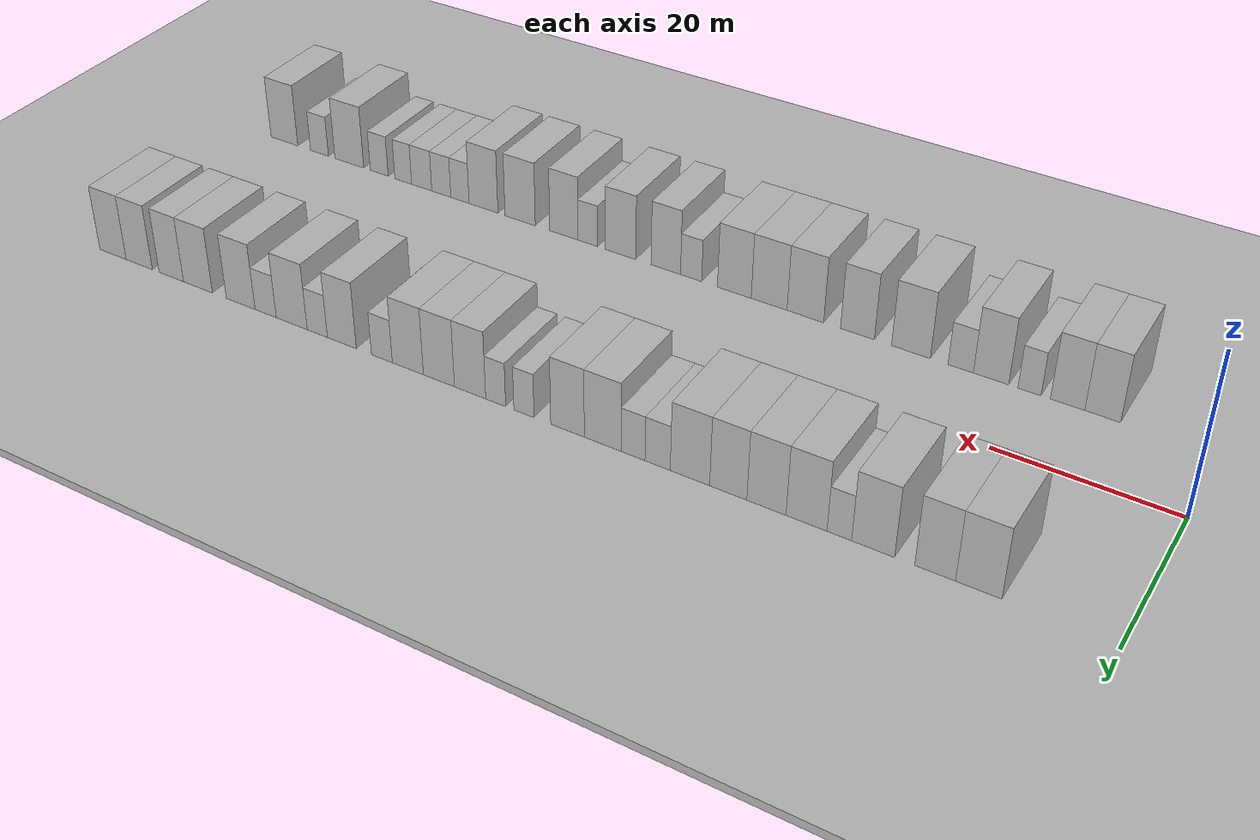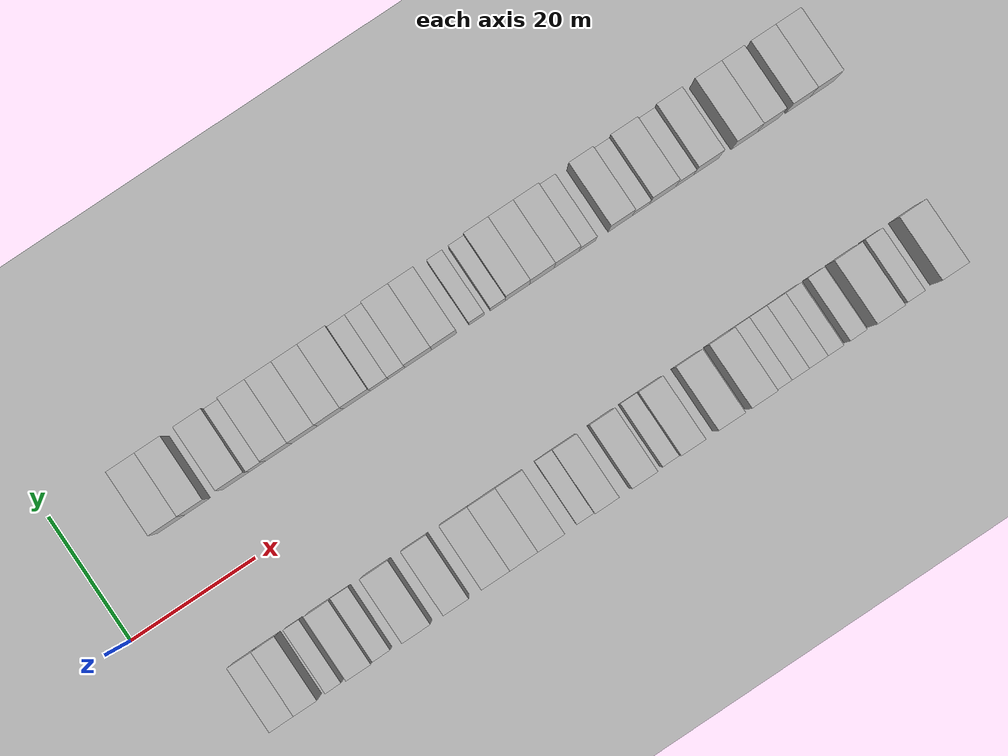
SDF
<sdf version="1.6">
 <world name="default">
  <include><name>ground_plane_1</name><uri>model://HANNAS_ground_plane</uri></include>
  <include>
   <name>ground_plane_2</name>
   <uri>model://HANNAS_ground_plane</uri>
   <pose>100 0 0  0 0 0</pose>
  </include>
  <model name="building_1">
   <static>1</static>
   <pose>13.2403 15.0000 0 0.000000 0.000000 1.570796</pose>
   <link name="link">
    <pose>0 0 4.50 0 0 0</pose>
    <collision name="collision"><geometry><box><size>10.0000 4.4805 9.0000</size></box></geometry></collision>
    <visual name="visual">
     <cast_shadows>0</cast_shadows>
     <geometry><box><size>10.0000 4.4805 9.0000</size></box></geometry>
     <material>
      <script>
       <uri>model://HANNAS_wall/materials/scripts</uri>
       <uri>model://HANNAS_wall/materials/textures</uri>
       <name>vrc/HANNAS_wall</name>
      </script>
     </material>
    </visual>
   </link>
  </model>
  <model name="building_2">
   <static>1</static>
   <pose>17.4862 15.0000 0 0.000000 0.000000 1.570796</pose>
   <link name="link">
    <pose>0 0 4.50 0 0 0</pose>
    <collision name="collision"><geometry><box><size>10.0000 4.0113 9.0000</size></box></geometry></collision>
    <visual name="visual">
     <cast_shadows>0</cast_shadows>
     <geometry><box><size>10.0000 4.0113 9.0000</size></box></geometry>
     <material>
      <script>
       <uri>model://HANNAS_wall/materials/scripts</uri>
       <uri>model://HANNAS_wall/materials/textures</uri>
       <name>vrc/HANNAS_wall</name>
      </script>
     </material>
    </visual>
   </link>
  </model>
  <model name="building_3">
   <static>1</static>
   <pose>23.6738 15.0000 0 0.000000 0.000000 1.570796</pose>
   <link name="link">
    <pose>0 0 4.50 0 0 0</pose>
    <collision name="collision"><geometry><box><size>10.0000 4.3640 9.0000</size></box></geometry></collision>
    <visual name="visual">
     <cast_shadows>0</cast_shadows>
     <geometry><box><size>10.0000 4.3640 9.0000</size></box></geometry>
     <material>
      <script>
       <uri>model://HANNAS_wall/materials/scripts</uri>
       <uri>model://HANNAS_wall/materials/textures</uri>
       <name>vrc/HANNAS_wall</name>
      </script>
     </material>
    </visual>
   </link>
  </model>
  <model name="building_4">
   <static>1</static>
   <pose>27.1243 15.0000 0 0.000000 0.000000 1.570796</pose>
   <link name="link">
    <pose>0 0 3.00 0 0 0</pose>
    <collision name="collision"><geometry><box><size>10.0000 2.5370 6.0000</size></box></geometry></collision>
    <visual name="visual">
     <cast_shadows>0</cast_shadows>
     <geometry><box><size>10.0000 2.5370 6.0000</size></box></geometry>
     <material>
      <script>
       <uri>model://HANNAS_wall/materials/scripts</uri>
       <uri>model://HANNAS_wall/materials/textures</uri>
       <name>vrc/HANNAS_wall</name>
      </script>
     </material>
    </visual>
   </link>
  </model>
  <model name="building_5">
   <static>1</static>
   <pose>30.5359 15.0000 0 0.000000 0.000000 1.570796</pose>
   <link name="link">
    <pose>0 0 4.50 0 0 0</pose>
    <collision name="collision"><geometry><box><size>10.0000 4.2863 9.0000</size></box></geometry></collision>
    <visual name="visual">
     <cast_shadows>0</cast_shadows>
     <geometry><box><size>10.0000 4.2863 9.0000</size></box></geometry>
     <material>
      <script>
       <uri>model://HANNAS_wall/materials/scripts</uri>
       <uri>model://HANNAS_wall/materials/textures</uri>
       <name>vrc/HANNAS_wall</name>
      </script>
     </material>
    </visual>
   </link>
  </model>
  <model name="building_6">
   <static>1</static>
   <pose>34.7743 15.0000 0 0.000000 0.000000 1.570796</pose>
   <link name="link">
    <pose>0 0 4.50 0 0 0</pose>
    <collision name="collision"><geometry><box><size>10.0000 4.1904 9.0000</size></box></geometry></collision>
    <visual name="visual">
     <cast_shadows>0</cast_shadows>
     <geometry><box><size>10.0000 4.1904 9.0000</size></box></geometry>
     <material>
      <script>
       <uri>model://HANNAS_wall/materials/scripts</uri>
       <uri>model://HANNAS_wall/materials/textures</uri>
       <name>vrc/HANNAS_wall</name>
      </script>
     </material>
    </visual>
   </link>
  </model>
  <model name="building_7">
   <static>1</static>
   <pose>38.8950 15.0000 0 0.000000 0.000000 1.570796</pose>
   <link name="link">
    <pose>0 0 4.50 0 0 0</pose>
    <collision name="collision"><geometry><box><size>10.0000 4.0511 9.0000</size></box></geometry></collision>
    <visual name="visual">
     <cast_shadows>0</cast_shadows>
     <geometry><box><size>10.0000 4.0511 9.0000</size></box></geometry>
     <material>
      <script>
       <uri>model://HANNAS_wall/materials/scripts</uri>
       <uri>model://HANNAS_wall/materials/textures</uri>
       <name>vrc/HANNAS_wall</name>
      </script>
     </material>
    </visual>
   </link>
  </model>
  <model name="building_8">
   <static>1</static>
   <pose>43.1086 15.0000 0 0.000000 0.000000 1.570796</pose>
   <link name="link">
    <pose>0 0 4.50 0 0 0</pose>
    <collision name="collision"><geometry><box><size>10.0000 4.3761 9.0000</size></box></geometry></collision>
    <visual name="visual">
     <cast_shadows>0</cast_shadows>
     <geometry><box><size>10.0000 4.3761 9.0000</size></box></geometry>
     <material>
      <script>
       <uri>model://HANNAS_wall/materials/scripts</uri>
       <uri>model://HANNAS_wall/materials/textures</uri>
       <name>vrc/HANNAS_wall</name>
      </script>
     </material>
    </visual>
   </link>
  </model>
  <model name="building_9">
   <static>1</static>
   <pose>46.7246 15.0000 0 0.000000 0.000000 1.570796</pose>
   <link name="link">
    <pose>0 0 3.00 0 0 0</pose>
    <collision name="collision"><geometry><box><size>10.0000 2.8559 6.0000</size></box></geometry></collision>
    <visual name="visual">
     <cast_shadows>0</cast_shadows>
     <geometry><box><size>10.0000 2.8559 6.0000</size></box></geometry>
     <material>
      <script>
       <uri>model://HANNAS_wall/materials/scripts</uri>
       <uri>model://HANNAS_wall/materials/textures</uri>
       <name>vrc/HANNAS_wall</name>
      </script>
     </material>
    </visual>
   </link>
  </model>
  <model name="building_10">
   <static>1</static>
   <pose>49.5225 15.0000 0 0.000000 0.000000 1.570796</pose>
   <link name="link">
    <pose>0 0 3.00 0 0 0</pose>
    <collision name="collision"><geometry><box><size>10.0000 2.7400 6.0000</size></box></geometry></collision>
    <visual name="visual">
     <cast_shadows>0</cast_shadows>
     <geometry><box><size>10.0000 2.7400 6.0000</size></box></geometry>
     <material>
      <script>
       <uri>model://HANNAS_wall/materials/scripts</uri>
       <uri>model://HANNAS_wall/materials/textures</uri>
       <name>vrc/HANNAS_wall</name>
      </script>
     </material>
    </visual>
   </link>
  </model>
  <model name="building_11">
   <static>1</static>
   <pose>53.0292 15.0000 0 0.000000 0.000000 1.570796</pose>
   <link name="link">
    <pose>0 0 4.50 0 0 0</pose>
    <collision name="collision"><geometry><box><size>10.0000 4.2733 9.0000</size></box></geometry></collision>
    <visual name="visual">
     <cast_shadows>0</cast_shadows>
     <geometry><box><size>10.0000 4.2733 9.0000</size></box></geometry>
     <material>
      <script>
       <uri>model://HANNAS_wall/materials/scripts</uri>
       <uri>model://HANNAS_wall/materials/textures</uri>
       <name>vrc/HANNAS_wall</name>
      </script>
     </material>
    </visual>
   </link>
  </model>
  <model name="building_12">
   <static>1</static>
   <pose>57.1540 15.0000 0 0.000000 0.000000 1.570796</pose>
   <link name="link">
    <pose>0 0 4.50 0 0 0</pose>
    <collision name="collision"><geometry><box><size>10.0000 3.9763 9.0000</size></box></geometry></collision>
    <visual name="visual">
     <cast_shadows>0</cast_shadows>
     <geometry><box><size>10.0000 3.9763 9.0000</size></box></geometry>
     <material>
      <script>
       <uri>model://HANNAS_wall/materials/scripts</uri>
       <uri>model://HANNAS_wall/materials/textures</uri>
       <name>vrc/HANNAS_wall</name>
      </script>
     </material>
    </visual>
   </link>
  </model>
  <model name="building_13">
   <static>1</static>
   <pose>62.3634 15.0000 0 0.000000 0.000000 1.570796</pose>
   <link name="link">
    <pose>0 0 3.00 0 0 0</pose>
    <collision name="collision"><geometry><box><size>10.0000 2.4425 6.0000</size></box></geometry></collision>
    <visual name="visual">
     <cast_shadows>0</cast_shadows>
     <geometry><box><size>10.0000 2.4425 6.0000</size></box></geometry>
     <material>
      <script>
       <uri>model://HANNAS_wall/materials/scripts</uri>
       <uri>model://HANNAS_wall/materials/textures</uri>
       <name>vrc/HANNAS_wall</name>
      </script>
     </material>
    </visual>
   </link>
  </model>
  <model name="building_14">
   <static>1</static>
   <pose>65.8140 15.0000 0 0.000000 0.000000 1.570796</pose>
   <link name="link">
    <pose>0 0 3.00 0 0 0</pose>
    <collision name="collision"><geometry><box><size>10.0000 2.4586 6.0000</size></box></geometry></collision>
    <visual name="visual">
     <cast_shadows>0</cast_shadows>
     <geometry><box><size>10.0000 2.4586 6.0000</size></box></geometry>
     <material>
      <script>
       <uri>model://HANNAS_wall/materials/scripts</uri>
       <uri>model://HANNAS_wall/materials/textures</uri>
       <name>vrc/HANNAS_wall</name>
      </script>
     </material>
    </visual>
   </link>
  </model>
  <model name="building_15">
   <static>1</static>
   <pose>68.9917 15.0000 0 0.000000 0.000000 1.570796</pose>
   <link name="link">
    <pose>0 0 4.50 0 0 0</pose>
    <collision name="collision"><geometry><box><size>10.0000 3.8968 9.0000</size></box></geometry></collision>
    <visual name="visual">
     <cast_shadows>0</cast_shadows>
     <geometry><box><size>10.0000 3.8968 9.0000</size></box></geometry>
     <material>
      <script>
       <uri>model://HANNAS_wall/materials/scripts</uri>
       <uri>model://HANNAS_wall/materials/textures</uri>
       <name>vrc/HANNAS_wall</name>
      </script>
     </material>
    </visual>
   </link>
  </model>
  <model name="building_16">
   <static>1</static>
   <pose>72.9153 15.0000 0 0.000000 0.000000 1.570796</pose>
   <link name="link">
    <pose>0 0 4.50 0 0 0</pose>
    <collision name="collision"><geometry><box><size>10.0000 3.9504 9.0000</size></box></geometry></collision>
    <visual name="visual">
     <cast_shadows>0</cast_shadows>
     <geometry><box><size>10.0000 3.9504 9.0000</size></box></geometry>
     <material>
      <script>
       <uri>model://HANNAS_wall/materials/scripts</uri>
       <uri>model://HANNAS_wall/materials/textures</uri>
       <name>vrc/HANNAS_wall</name>
      </script>
     </material>
    </visual>
   </link>
  </model>
  <model name="building_17">
   <static>1</static>
   <pose>76.8977 15.0000 0 0.000000 0.000000 1.570796</pose>
   <link name="link">
    <pose>0 0 4.50 0 0 0</pose>
    <collision name="collision"><geometry><box><size>10.0000 4.0143 9.0000</size></box></geometry></collision>
    <visual name="visual">
     <cast_shadows>0</cast_shadows>
     <geometry><box><size>10.0000 4.0143 9.0000</size></box></geometry>
     <material>
      <script>
       <uri>model://HANNAS_wall/materials/scripts</uri>
       <uri>model://HANNAS_wall/materials/textures</uri>
       <name>vrc/HANNAS_wall</name>
      </script>
     </material>
    </visual>
   </link>
  </model>
  <model name="building_18">
   <static>1</static>
   <pose>80.2734 15.0000 0 0.000000 0.000000 1.570796</pose>
   <link name="link">
    <pose>0 0 3.00 0 0 0</pose>
    <collision name="collision"><geometry><box><size>10.0000 2.7371 6.0000</size></box></geometry></collision>
    <visual name="visual">
     <cast_shadows>0</cast_shadows>
     <geometry><box><size>10.0000 2.7371 6.0000</size></box></geometry>
     <material>
      <script>
       <uri>model://HANNAS_wall/materials/scripts</uri>
       <uri>model://HANNAS_wall/materials/textures</uri>
       <name>vrc/HANNAS_wall</name>
      </script>
     </material>
    </visual>
   </link>
  </model>
  <model name="building_19">
   <static>1</static>
   <pose>85.5805 15.0000 0 0.000000 0.000000 1.570796</pose>
   <link name="link">
    <pose>0 0 4.50 0 0 0</pose>
    <collision name="collision"><geometry><box><size>10.0000 3.8772 9.0000</size></box></geometry></collision>
    <visual name="visual">
     <cast_shadows>0</cast_shadows>
     <geometry><box><size>10.0000 3.8772 9.0000</size></box></geometry>
     <material>
      <script>
       <uri>model://HANNAS_wall/materials/scripts</uri>
       <uri>model://HANNAS_wall/materials/textures</uri>
       <name>vrc/HANNAS_wall</name>
      </script>
     </material>
    </visual>
   </link>
  </model>
  <model name="building_20">
   <static>1</static>
   <pose>88.8902 15.0000 0 0.000000 0.000000 1.570796</pose>
   <link name="link">
    <pose>0 0 3.00 0 0 0</pose>
    <collision name="collision"><geometry><box><size>10.0000 2.7421 6.0000</size></box></geometry></collision>
    <visual name="visual">
     <cast_shadows>0</cast_shadows>
     <geometry><box><size>10.0000 2.7421 6.0000</size></box></geometry>
     <material>
      <script>
       <uri>model://HANNAS_wall/materials/scripts</uri>
       <uri>model://HANNAS_wall/materials/textures</uri>
       <name>vrc/HANNAS_wall</name>
      </script>
     </material>
    </visual>
   </link>
  </model>
  <model name="building_21">
   <static>1</static>
   <pose>92.3960 15.0000 0 0.000000 0.000000 1.570796</pose>
   <link name="link">
    <pose>0 0 4.50 0 0 0</pose>
    <collision name="collision"><geometry><box><size>10.0000 4.2694 9.0000</size></box></geometry></collision>
    <visual name="visual">
     <cast_shadows>0</cast_shadows>
     <geometry><box><size>10.0000 4.2694 9.0000</size></box></geometry>
     <material>
      <script>
       <uri>model://HANNAS_wall/materials/scripts</uri>
       <uri>model://HANNAS_wall/materials/textures</uri>
       <name>vrc/HANNAS_wall</name>
      </script>
     </material>
    </visual>
   </link>
  </model>
  <model name="building_22">
   <static>1</static>
   <pose>96.0144 15.0000 0 0.000000 0.000000 1.570796</pose>
   <link name="link">
    <pose>0 0 3.00 0 0 0</pose>
    <collision name="collision"><geometry><box><size>10.0000 2.9675 6.0000</size></box></geometry></collision>
    <visual name="visual">
     <cast_shadows>0</cast_shadows>
     <geometry><box><size>10.0000 2.9675 6.0000</size></box></geometry>
     <material>
      <script>
       <uri>model://HANNAS_wall/materials/scripts</uri>
       <uri>model://HANNAS_wall/materials/textures</uri>
       <name>vrc/HANNAS_wall</name>
      </script>
     </material>
    </visual>
   </link>
  </model>
  <model name="building_23">
   <static>1</static>
   <pose>99.5372 15.0000 0 0.000000 0.000000 1.570796</pose>
   <link name="link">
    <pose>0 0 4.50 0 0 0</pose>
    <collision name="collision"><geometry><box><size>10.0000 4.0781 9.0000</size></box></geometry></collision>
    <visual name="visual">
     <cast_shadows>0</cast_shadows>
     <geometry><box><size>10.0000 4.0781 9.0000</size></box></geometry>
     <material>
      <script>
       <uri>model://HANNAS_wall/materials/scripts</uri>
       <uri>model://HANNAS_wall/materials/textures</uri>
       <name>vrc/HANNAS_wall</name>
      </script>
     </material>
    </visual>
   </link>
  </model>
  <model name="building_24">
   <static>1</static>
   <pose>105.6839 15.0000 0 0.000000 0.000000 1.570796</pose>
   <link name="link">
    <pose>0 0 4.50 0 0 0</pose>
    <collision name="collision"><geometry><box><size>10.0000 4.2154 9.0000</size></box></geometry></collision>
    <visual name="visual">
     <cast_shadows>0</cast_shadows>
     <geometry><box><size>10.0000 4.2154 9.0000</size></box></geometry>
     <material>
      <script>
       <uri>model://HANNAS_wall/materials/scripts</uri>
       <uri>model://HANNAS_wall/materials/textures</uri>
       <name>vrc/HANNAS_wall</name>
      </script>
     </material>
    </visual>
   </link>
  </model>
  <model name="building_25">
   <static>1</static>
   <pose>109.6026 15.0000 0 0.000000 0.000000 1.570796</pose>
   <link name="link">
    <pose>0 0 4.50 0 0 0</pose>
    <collision name="collision"><geometry><box><size>10.0000 3.6221 9.0000</size></box></geometry></collision>
    <visual name="visual">
     <cast_shadows>0</cast_shadows>
     <geometry><box><size>10.0000 3.6221 9.0000</size></box></geometry>
     <material>
      <script>
       <uri>model://HANNAS_wall/materials/scripts</uri>
       <uri>model://HANNAS_wall/materials/textures</uri>
       <name>vrc/HANNAS_wall</name>
      </script>
     </material>
    </visual>
   </link>
  </model>
  <model name="building_26">
   <static>1</static>
   <pose>114.3878 15.0000 0 0.000000 0.000000 1.570796</pose>
   <link name="link">
    <pose>0 0 4.50 0 0 0</pose>
    <collision name="collision"><geometry><box><size>10.0000 3.9483 9.0000</size></box></geometry></collision>
    <visual name="visual">
     <cast_shadows>0</cast_shadows>
     <geometry><box><size>10.0000 3.9483 9.0000</size></box></geometry>
     <material>
      <script>
       <uri>model://HANNAS_wall/materials/scripts</uri>
       <uri>model://HANNAS_wall/materials/textures</uri>
       <name>vrc/HANNAS_wall</name>
      </script>
     </material>
    </visual>
   </link>
  </model>
  <model name="building_27">
   <static>1</static>
   <pose>118.3760 15.0000 0 0.000000 0.000000 1.570796</pose>
   <link name="link">
    <pose>0 0 4.50 0 0 0</pose>
    <collision name="collision"><geometry><box><size>10.0000 4.0280 9.0000</size></box></geometry></collision>
    <visual name="visual">
     <cast_shadows>0</cast_shadows>
     <geometry><box><size>10.0000 4.0280 9.0000</size></box></geometry>
     <material>
      <script>
       <uri>model://HANNAS_wall/materials/scripts</uri>
       <uri>model://HANNAS_wall/materials/textures</uri>
       <name>vrc/HANNAS_wall</name>
      </script>
     </material>
    </visual>
   </link>
  </model>
  <model name="building_56">
   <static>1</static>
   <pose>11.8837 -15.0000 0 0.000000 0.000000 1.570796</pose>
   <link name="link">
    <pose>0 0 4.50 0 0 0</pose>
    <collision name="collision"><geometry><box><size>10.0000 3.7673 9.0000</size></box></geometry></collision>
    <visual name="visual">
     <cast_shadows>0</cast_shadows>
     <geometry><box><size>10.0000 3.7673 9.0000</size></box></geometry>
     <material>
      <script>
       <uri>model://HANNAS_wall/materials/scripts</uri>
       <uri>model://HANNAS_wall/materials/textures</uri>
       <name>vrc/HANNAS_wall</name>
      </script>
     </material>
    </visual>
   </link>
  </model>
  <model name="building_57">
   <static>1</static>
   <pose>15.5975 -15.0000 0 0.000000 0.000000 1.570796</pose>
   <link name="link">
    <pose>0 0 4.50 0 0 0</pose>
    <collision name="collision"><geometry><box><size>10.0000 3.6603 9.0000</size></box></geometry></collision>
    <visual name="visual">
     <cast_shadows>0</cast_shadows>
     <geometry><box><size>10.0000 3.6603 9.0000</size></box></geometry>
     <material>
      <script>
       <uri>model://HANNAS_wall/materials/scripts</uri>
       <uri>model://HANNAS_wall/materials/textures</uri>
       <name>vrc/HANNAS_wall</name>
      </script>
     </material>
    </visual>
   </link>
  </model>
  <model name="building_58">
   <static>1</static>
   <pose>19.6850 -15.0000 0 0.000000 0.000000 1.570796</pose>
   <link name="link">
    <pose>0 0 3.00 0 0 0</pose>
    <collision name="collision"><geometry><box><size>10.0000 2.5149 6.0000</size></box></geometry></collision>
    <visual name="visual">
     <cast_shadows>0</cast_shadows>
     <geometry><box><size>10.0000 2.5149 6.0000</size></box></geometry>
     <material>
      <script>
       <uri>model://HANNAS_wall/materials/scripts</uri>
       <uri>model://HANNAS_wall/materials/textures</uri>
       <name>vrc/HANNAS_wall</name>
      </script>
     </material>
    </visual>
   </link>
  </model>
  <model name="building_59">
   <static>1</static>
   <pose>23.8967 -15.0000 0 0.000000 0.000000 1.570796</pose>
   <link name="link">
    <pose>0 0 4.50 0 0 0</pose>
    <collision name="collision"><geometry><box><size>10.0000 3.9086 9.0000</size></box></geometry></collision>
    <visual name="visual">
     <cast_shadows>0</cast_shadows>
     <geometry><box><size>10.0000 3.9086 9.0000</size></box></geometry>
     <material>
      <script>
       <uri>model://HANNAS_wall/materials/scripts</uri>
       <uri>model://HANNAS_wall/materials/textures</uri>
       <name>vrc/HANNAS_wall</name>
      </script>
     </material>
    </visual>
   </link>
  </model>
  <model name="building_60">
   <static>1</static>
   <pose>27.2649 -15.0000 0 0.000000 0.000000 1.570796</pose>
   <link name="link">
    <pose>0 0 3.00 0 0 0</pose>
    <collision name="collision"><geometry><box><size>10.0000 2.8278 6.0000</size></box></geometry></collision>
    <visual name="visual">
     <cast_shadows>0</cast_shadows>
     <geometry><box><size>10.0000 2.8278 6.0000</size></box></geometry>
     <material>
      <script>
       <uri>model://HANNAS_wall/materials/scripts</uri>
       <uri>model://HANNAS_wall/materials/textures</uri>
       <name>vrc/HANNAS_wall</name>
      </script>
     </material>
    </visual>
   </link>
  </model>
  <model name="building_61">
   <static>1</static>
   <pose>32.9056 -15.0000 0 0.000000 0.000000 1.570796</pose>
   <link name="link">
    <pose>0 0 4.50 0 0 0</pose>
    <collision name="collision"><geometry><box><size>10.0000 4.4535 9.0000</size></box></geometry></collision>
    <visual name="visual">
     <cast_shadows>0</cast_shadows>
     <geometry><box><size>10.0000 4.4535 9.0000</size></box></geometry>
     <material>
      <script>
       <uri>model://HANNAS_wall/materials/scripts</uri>
       <uri>model://HANNAS_wall/materials/textures</uri>
       <name>vrc/HANNAS_wall</name>
      </script>
     </material>
    </visual>
   </link>
  </model>
  <model name="building_62">
   <static>1</static>
   <pose>39.1296 -15.0000 0 0.000000 0.000000 1.570796</pose>
   <link name="link">
    <pose>0 0 4.50 0 0 0</pose>
    <collision name="collision"><geometry><box><size>10.0000 3.9947 9.0000</size></box></geometry></collision>
    <visual name="visual">
     <cast_shadows>0</cast_shadows>
     <geometry><box><size>10.0000 3.9947 9.0000</size></box></geometry>
     <material>
      <script>
       <uri>model://HANNAS_wall/materials/scripts</uri>
       <uri>model://HANNAS_wall/materials/textures</uri>
       <name>vrc/HANNAS_wall</name>
      </script>
     </material>
    </visual>
   </link>
  </model>
  <model name="building_63">
   <static>1</static>
   <pose>45.3439 -15.0000 0 0.000000 0.000000 1.570796</pose>
   <link name="link">
    <pose>0 0 4.50 0 0 0</pose>
    <collision name="collision"><geometry><box><size>10.0000 4.4339 9.0000</size></box></geometry></collision>
    <visual name="visual">
     <cast_shadows>0</cast_shadows>
     <geometry><box><size>10.0000 4.4339 9.0000</size></box></geometry>
     <material>
      <script>
       <uri>model://HANNAS_wall/materials/scripts</uri>
       <uri>model://HANNAS_wall/materials/textures</uri>
       <name>vrc/HANNAS_wall</name>
      </script>
     </material>
    </visual>
   </link>
  </model>
  <model name="building_64">
   <static>1</static>
   <pose>49.7666 -15.0000 0 0.000000 0.000000 1.570796</pose>
   <link name="link">
    <pose>0 0 4.50 0 0 0</pose>
    <collision name="collision"><geometry><box><size>10.0000 4.4116 9.0000</size></box></geometry></collision>
    <visual name="visual">
     <cast_shadows>0</cast_shadows>
     <geometry><box><size>10.0000 4.4116 9.0000</size></box></geometry>
     <material>
      <script>
       <uri>model://HANNAS_wall/materials/scripts</uri>
       <uri>model://HANNAS_wall/materials/textures</uri>
       <name>vrc/HANNAS_wall</name>
      </script>
     </material>
    </visual>
   </link>
  </model>
  <model name="building_65">
   <static>1</static>
   <pose>54.0884 -15.0000 0 0.000000 0.000000 1.570796</pose>
   <link name="link">
    <pose>0 0 4.50 0 0 0</pose>
    <collision name="collision"><geometry><box><size>10.0000 4.2319 9.0000</size></box></geometry></collision>
    <visual name="visual">
     <cast_shadows>0</cast_shadows>
     <geometry><box><size>10.0000 4.2319 9.0000</size></box></geometry>
     <material>
      <script>
       <uri>model://HANNAS_wall/materials/scripts</uri>
       <uri>model://HANNAS_wall/materials/textures</uri>
       <name>vrc/HANNAS_wall</name>
      </script>
     </material>
    </visual>
   </link>
  </model>
  <model name="building_66">
   <static>1</static>
   <pose>59.5609 -15.0000 0 0.000000 0.000000 1.570796</pose>
   <link name="link">
    <pose>0 0 3.00 0 0 0</pose>
    <collision name="collision"><geometry><box><size>10.0000 2.7131 6.0000</size></box></geometry></collision>
    <visual name="visual">
     <cast_shadows>0</cast_shadows>
     <geometry><box><size>10.0000 2.7131 6.0000</size></box></geometry>
     <material>
      <script>
       <uri>model://HANNAS_wall/materials/scripts</uri>
       <uri>model://HANNAS_wall/materials/textures</uri>
       <name>vrc/HANNAS_wall</name>
      </script>
     </material>
    </visual>
   </link>
  </model>
  <model name="building_67">
   <static>1</static>
   <pose>62.8295 -15.0000 0 0.000000 0.000000 1.570796</pose>
   <link name="link">
    <pose>0 0 4.50 0 0 0</pose>
    <collision name="collision"><geometry><box><size>10.0000 3.8240 9.0000</size></box></geometry></collision>
    <visual name="visual">
     <cast_shadows>0</cast_shadows>
     <geometry><box><size>10.0000 3.8240 9.0000</size></box></geometry>
     <material>
      <script>
       <uri>model://HANNAS_wall/materials/scripts</uri>
       <uri>model://HANNAS_wall/materials/textures</uri>
       <name>vrc/HANNAS_wall</name>
      </script>
     </material>
    </visual>
   </link>
  </model>
  <model name="building_68">
   <static>1</static>
   <pose>68.7747 -15.0000 0 0.000000 0.000000 1.570796</pose>
   <link name="link">
    <pose>0 0 4.50 0 0 0</pose>
    <collision name="collision"><geometry><box><size>10.0000 4.0665 9.0000</size></box></geometry></collision>
    <visual name="visual">
     <cast_shadows>0</cast_shadows>
     <geometry><box><size>10.0000 4.0665 9.0000</size></box></geometry>
     <material>
      <script>
       <uri>model://HANNAS_wall/materials/scripts</uri>
       <uri>model://HANNAS_wall/materials/textures</uri>
       <name>vrc/HANNAS_wall</name>
      </script>
     </material>
    </visual>
   </link>
  </model>
  <model name="building_69">
   <static>1</static>
   <pose>73.1329 -15.0000 0 0.000000 0.000000 1.570796</pose>
   <link name="link">
    <pose>0 0 3.00 0 0 0</pose>
    <collision name="collision"><geometry><box><size>10.0000 2.6498 6.0000</size></box></geometry></collision>
    <visual name="visual">
     <cast_shadows>0</cast_shadows>
     <geometry><box><size>10.0000 2.6498 6.0000</size></box></geometry>
     <material>
      <script>
       <uri>model://HANNAS_wall/materials/scripts</uri>
       <uri>model://HANNAS_wall/materials/textures</uri>
       <name>vrc/HANNAS_wall</name>
      </script>
     </material>
    </visual>
   </link>
  </model>
  <model name="building_70">
   <static>1</static>
   <pose>76.3971 -15.0000 0 0.000000 0.000000 1.570796</pose>
   <link name="link">
    <pose>0 0 4.50 0 0 0</pose>
    <collision name="collision"><geometry><box><size>10.0000 3.8786 9.0000</size></box></geometry></collision>
    <visual name="visual">
     <cast_shadows>0</cast_shadows>
     <geometry><box><size>10.0000 3.8786 9.0000</size></box></geometry>
     <material>
      <script>
       <uri>model://HANNAS_wall/materials/scripts</uri>
       <uri>model://HANNAS_wall/materials/textures</uri>
       <name>vrc/HANNAS_wall</name>
      </script>
     </material>
    </visual>
   </link>
  </model>
  <model name="building_71">
   <static>1</static>
   <pose>82.4584 -15.0000 0 0.000000 0.000000 1.570796</pose>
   <link name="link">
    <pose>0 0 4.50 0 0 0</pose>
    <collision name="collision"><geometry><box><size>10.0000 4.2440 9.0000</size></box></geometry></collision>
    <visual name="visual">
     <cast_shadows>0</cast_shadows>
     <geometry><box><size>10.0000 4.2440 9.0000</size></box></geometry>
     <material>
      <script>
       <uri>model://HANNAS_wall/materials/scripts</uri>
       <uri>model://HANNAS_wall/materials/textures</uri>
       <name>vrc/HANNAS_wall</name>
      </script>
     </material>
    </visual>
   </link>
  </model>
  <model name="building_72">
   <static>1</static>
   <pose>87.6436 -15.0000 0 0.000000 0.000000 1.570796</pose>
   <link name="link">
    <pose>0 0 4.50 0 0 0</pose>
    <collision name="collision"><geometry><box><size>10.0000 4.1266 9.0000</size></box></geometry></collision>
    <visual name="visual">
     <cast_shadows>0</cast_shadows>
     <geometry><box><size>10.0000 4.1266 9.0000</size></box></geometry>
     <material>
      <script>
       <uri>model://HANNAS_wall/materials/scripts</uri>
       <uri>model://HANNAS_wall/materials/textures</uri>
       <name>vrc/HANNAS_wall</name>
      </script>
     </material>
    </visual>
   </link>
  </model>
  <model name="building_73">
   <static>1</static>
   <pose>91.0307 -15.0000 0 0.000000 0.000000 1.570796</pose>
   <link name="link">
    <pose>0 0 3.00 0 0 0</pose>
    <collision name="collision"><geometry><box><size>10.0000 2.6475 6.0000</size></box></geometry></collision>
    <visual name="visual">
     <cast_shadows>0</cast_shadows>
     <geometry><box><size>10.0000 2.6475 6.0000</size></box></geometry>
     <material>
      <script>
       <uri>model://HANNAS_wall/materials/scripts</uri>
       <uri>model://HANNAS_wall/materials/textures</uri>
       <name>vrc/HANNAS_wall</name>
      </script>
     </material>
    </visual>
   </link>
  </model>
  <model name="building_74">
   <static>1</static>
   <pose>93.7445 -15.0000 0 0.000000 0.000000 1.570796</pose>
   <link name="link">
    <pose>0 0 3.00 0 0 0</pose>
    <collision name="collision"><geometry><box><size>10.0000 2.7800 6.0000</size></box></geometry></collision>
    <visual name="visual">
     <cast_shadows>0</cast_shadows>
     <geometry><box><size>10.0000 2.7800 6.0000</size></box></geometry>
     <material>
      <script>
       <uri>model://HANNAS_wall/materials/scripts</uri>
       <uri>model://HANNAS_wall/materials/textures</uri>
       <name>vrc/HANNAS_wall</name>
      </script>
     </material>
    </visual>
   </link>
  </model>
  <model name="building_75">
   <static>1</static>
   <pose>96.6247 -15.0000 0 0.000000 0.000000 1.570796</pose>
   <link name="link">
    <pose>0 0 3.00 0 0 0</pose>
    <collision name="collision"><geometry><box><size>10.0000 2.9805 6.0000</size></box></geometry></collision>
    <visual name="visual">
     <cast_shadows>0</cast_shadows>
     <geometry><box><size>10.0000 2.9805 6.0000</size></box></geometry>
     <material>
      <script>
       <uri>model://HANNAS_wall/materials/scripts</uri>
       <uri>model://HANNAS_wall/materials/textures</uri>
       <name>vrc/HANNAS_wall</name>
      </script>
     </material>
    </visual>
   </link>
  </model>
  <model name="building_76">
   <static>1</static>
   <pose>99.3688 -15.0000 0 0.000000 0.000000 1.570796</pose>
   <link name="link">
    <pose>0 0 3.00 0 0 0</pose>
    <collision name="collision"><geometry><box><size>10.0000 2.5076 6.0000</size></box></geometry></collision>
    <visual name="visual">
     <cast_shadows>0</cast_shadows>
     <geometry><box><size>10.0000 2.5076 6.0000</size></box></geometry>
     <material>
      <script>
       <uri>model://HANNAS_wall/materials/scripts</uri>
       <uri>model://HANNAS_wall/materials/textures</uri>
       <name>vrc/HANNAS_wall</name>
      </script>
     </material>
    </visual>
   </link>
  </model>
  <model name="building_77">
   <static>1</static>
   <pose>102.9765 -15.0000 0 0.000000 0.000000 1.570796</pose>
   <link name="link">
    <pose>0 0 3.00 0 0 0</pose>
    <collision name="collision"><geometry><box><size>10.0000 2.7079 6.0000</size></box></geometry></collision>
    <visual name="visual">
     <cast_shadows>0</cast_shadows>
     <geometry><box><size>10.0000 2.7079 6.0000</size></box></geometry>
     <material>
      <script>
       <uri>model://HANNAS_wall/materials/scripts</uri>
       <uri>model://HANNAS_wall/materials/textures</uri>
       <name>vrc/HANNAS_wall</name>
      </script>
     </material>
    </visual>
   </link>
  </model>
  <model name="building_78">
   <static>1</static>
   <pose>107.5526 -15.0000 0 0.000000 0.000000 1.570796</pose>
   <link name="link">
    <pose>0 0 4.50 0 0 0</pose>
    <collision name="collision"><geometry><box><size>10.0000 4.4445 9.0000</size></box></geometry></collision>
    <visual name="visual">
     <cast_shadows>0</cast_shadows>
     <geometry><box><size>10.0000 4.4445 9.0000</size></box></geometry>
     <material>
      <script>
       <uri>model://HANNAS_wall/materials/scripts</uri>
       <uri>model://HANNAS_wall/materials/textures</uri>
       <name>vrc/HANNAS_wall</name>
      </script>
     </material>
    </visual>
   </link>
  </model>
  <model name="building_79">
   <static>1</static>
   <pose>112.1808 -15.0000 0 0.000000 0.000000 1.570796</pose>
   <link name="link">
    <pose>0 0 3.00 0 0 0</pose>
    <collision name="collision"><geometry><box><size>10.0000 2.8119 6.0000</size></box></geometry></collision>
    <visual name="visual">
     <cast_shadows>0</cast_shadows>
     <geometry><box><size>10.0000 2.8119 6.0000</size></box></geometry>
     <material>
      <script>
       <uri>model://HANNAS_wall/materials/scripts</uri>
       <uri>model://HANNAS_wall/materials/textures</uri>
       <name>vrc/HANNAS_wall</name>
      </script>
     </material>
    </visual>
   </link>
  </model>
  <model name="building_80">
   <static>1</static>
   <pose>117.7212 -15.0000 0 0.000000 0.000000 1.570796</pose>
   <link name="link">
    <pose>0 0 4.50 0 0 0</pose>
    <collision name="collision"><geometry><box><size>10.0000 4.2688 9.0000</size></box></geometry></collision>
    <visual name="visual">
     <cast_shadows>0</cast_shadows>
     <geometry><box><size>10.0000 4.2688 9.0000</size></box></geometry>
     <material>
      <script>
       <uri>model://HANNAS_wall/materials/scripts</uri>
       <uri>model://HANNAS_wall/materials/textures</uri>
       <name>vrc/HANNAS_wall</name>
      </script>
     </material>
    </visual>
   </link>
  </model>
 </world>
</sdf>
